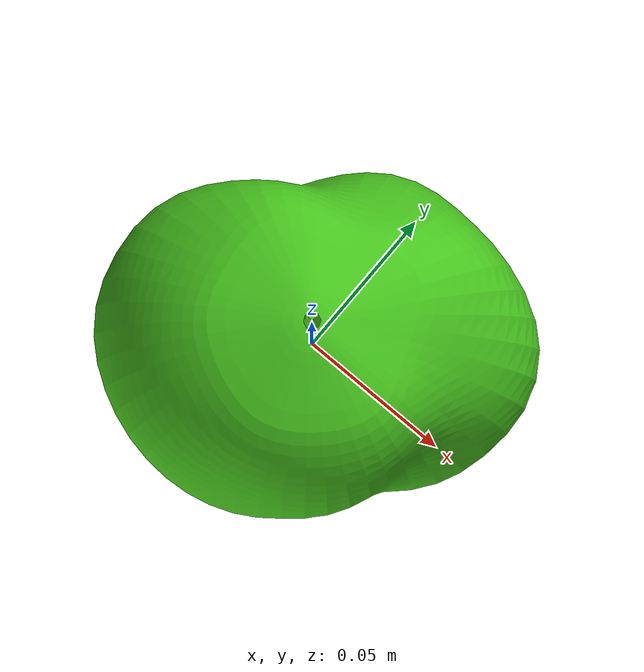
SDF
<?xml version="1.0" ?>
<sdf version="1.7">
  <model name="fragile_apple_10">
    <pose>0 0 0 0 0 0</pose>
    <link name="link">
      <inertial>
        <mass>0.69668</mass>
        <inertia>
          <ixx>0.00100322</ixx>
          <iyy>0.00100322</iyy>
          <izz>0.00100322</izz>
          <ixy>0</ixy>
          <ixz>0</ixz>
          <iyz>0</iyz>
        </inertia>
      </inertial>

      <collision name="collision">
        <geometry>
          <sphere>
            <radius>0.06000</radius>
          </sphere>
        </geometry>
        <surface>
          <friction>
            <ode>
              <mu>0.82</mu>
              <mu2>0.82</mu2>
            </ode>
          </friction>
          <contact>
            <ode>
              <kp>1000000.0</kp>
              <kd>0.9</kd>
              <min_depth>0.001</min_depth>
            </ode>
          </contact>
        </surface>
      </collision>

      <collision name="flat_base">
        <pose>0 0 -0.05500 0 0 0</pose>
        <geometry>
          <cylinder>
            <radius>0.0250</radius>
            <length>0.0100</length>
          </cylinder>
        </geometry>
        <surface>
          <friction>
            <ode>
              <mu>0.82</mu>
              <mu2>0.82</mu2>
            </ode>
          </friction>
          <contact>
            <ode>
              <kp>1000000.0</kp>
              <kd>0.9</kd>
              <min_depth>0.001</min_depth>
            </ode>
          </contact>
        </surface>
      </collision>

      <visual name="visual">
        <geometry>
          <mesh>
            <uri>model://apple_10/meshes/apple_10_v4.obj</uri>
            <scale>0.06000 0.06000 0.06000</scale>
          </mesh>
        </geometry>
        <material>
          <ambient>0.283 0.78 0.117 1</ambient>
          <diffuse>0.283 0.78 0.117 1</diffuse>
          <specular>0.25 0.25 0.25 1</specular>
        </material>
      </visual>
    </link>
      <plugin
      filename="libignition-gazebo-pose-publisher-system.so"
      name="ignition::gazebo::systems::PosePublisher">
      <publish_link_pose>false</publish_link_pose>
      <publish_nested_model_pose>true</publish_nested_model_pose>
      <use_pose_vector_msg>false</use_pose_vector_msg>
      <update_frequency>20</update_frequency>
    </plugin>
</model>
</sdf>
